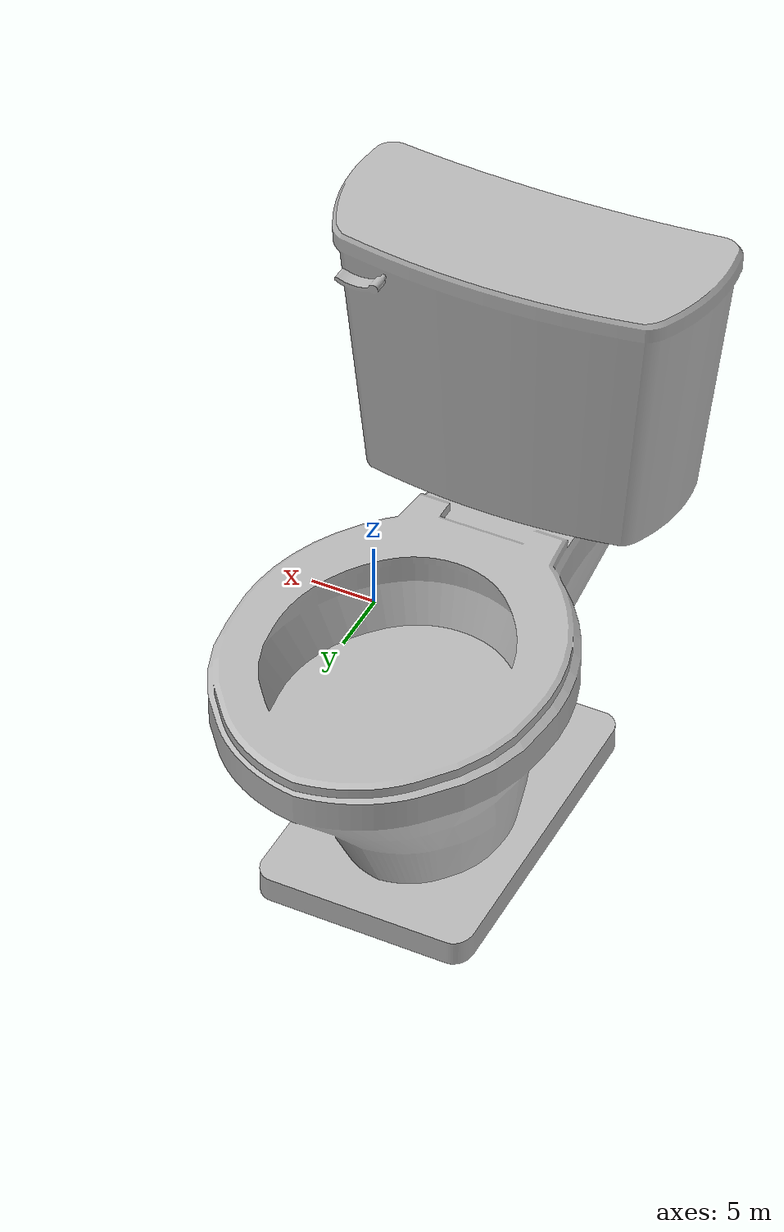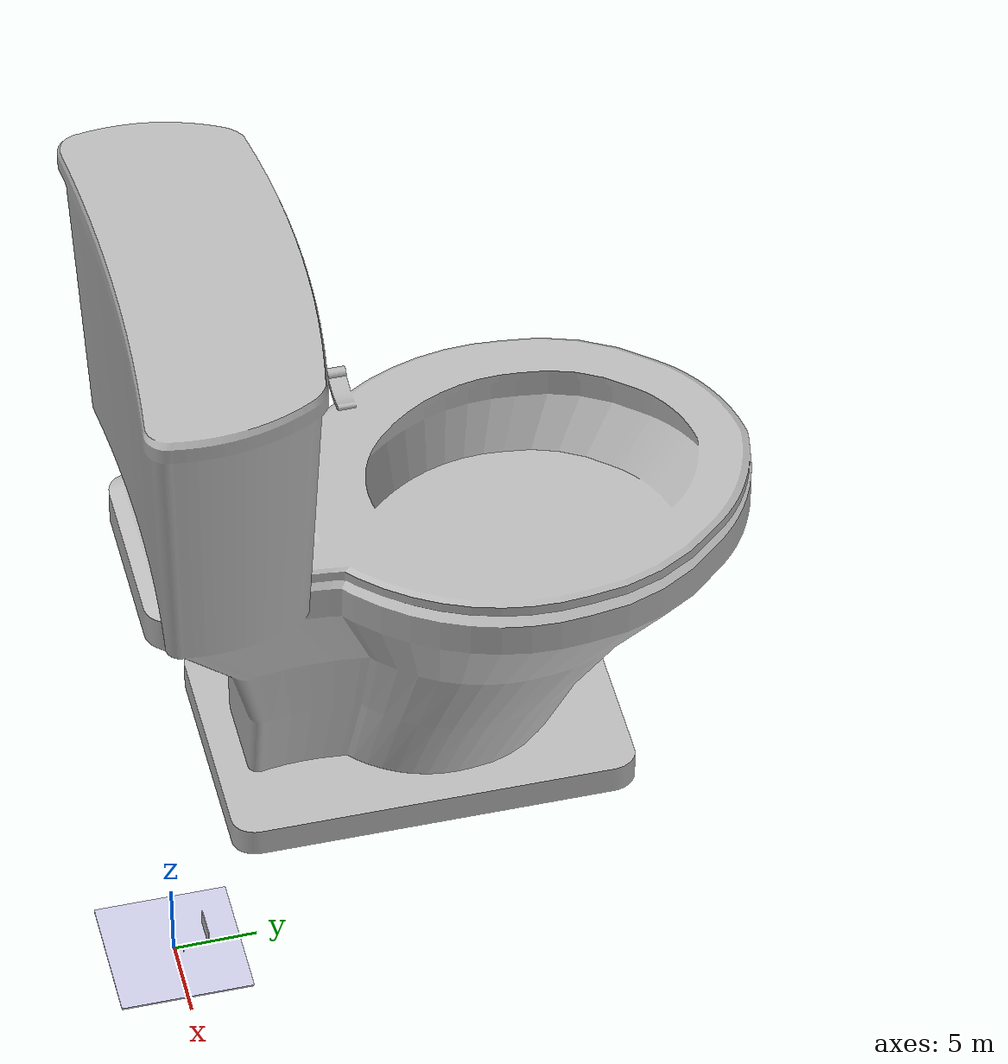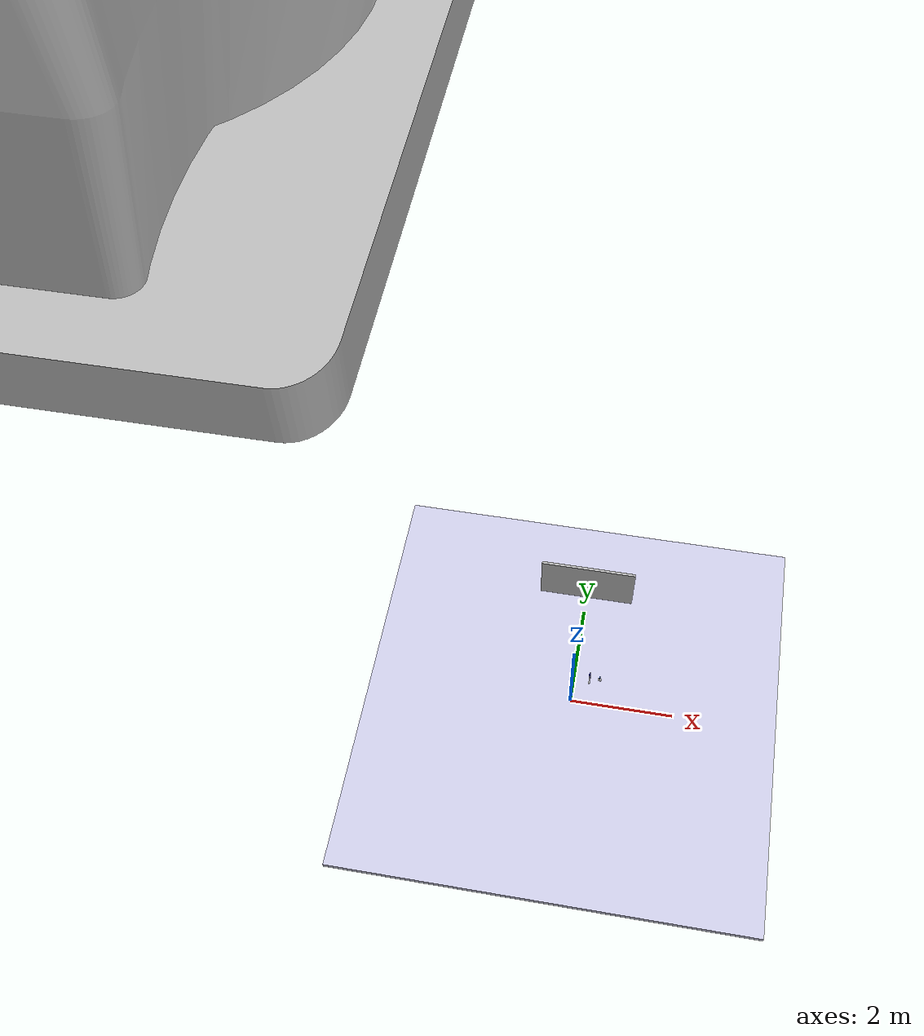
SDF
<sdf version="1.10">
 <world name="toilet_world">
  <physics name="1ms" type="ignored">
   <max_step_size>0.001</max_step_size>
   <real_time_factor>1</real_time_factor>
   <real_time_update_rate>1000</real_time_update_rate>
  </physics>
  <plugin name="gz::sim::systems::Physics" filename="gz-sim-physics-system"/>
  <plugin name="gz::sim::systems::UserCommands" filename="gz-sim-user-commands-system"/>
  <plugin name="gz::sim::systems::SceneBroadcaster" filename="gz-sim-scene-broadcaster-system"/>
  <plugin name="gz::sim::systems::Sensors" filename="gz-sim-sensors-system">
   <render_engine>ogre2</render_engine>
  </plugin>
  <scene>
   <ambient>0.400000006 0.400000006 0.400000006 1</ambient>
   <background>0.699999988 0.699999988 0.699999988 1</background>
   <shadows>true</shadows>
  </scene>
  <gravity>0 0 -9.8000000000000007</gravity>
  <magnetic_field>5.5644999999999998e-06 2.2875799999999999e-05 -4.2388400000000002e-05</magnetic_field>
  <atmosphere type="adiabatic"/>
  <model name="floor">
   <static>true</static>
   <link name="floor_link">
    <collision name="floor_collision">
     <geometry><box><size>8 8 0.10000000000000001</size></box></geometry>
    </collision>
    <visual name="floor_visual">
     <geometry><box><size>8 8 0.10000000000000001</size></box></geometry>
     <material>
      <ambient>0.800000012 0.800000012 0.899999976 1</ambient>
      <diffuse>0.800000012 0.800000012 0.899999976 1</diffuse>
      <specular>0.100000001 0.100000001 0.100000001 1</specular>
     </material>
    </visual>
    <inertial>
     <mass>1</mass>
     <inertia><ixx>1</ixx><ixy>0</ixy><ixz>0</ixz><iyy>1</iyy><iyz>0</iyz><izz>1</izz></inertia>
    </inertial>
   </link>
  </model>
  <model name="toilet">
   <pose>-1.2842909097671507 6.7122738983016393e-05 0 0 0 1.5700000841906609</pose>
   <model name="toilet">
    <static>true</static>
    <link name="link">
     <collision name="collision">
      <pose>-0.0038730000000000001 0.13400100000000001 0.58209699999999998 0 0 0</pose>
      <geometry><box><size>0.55163099999999998 1.09406 1.18218</size></box></geometry>
     </collision>
     <visual name="visual">
      <geometry>
       <mesh>
        <uri>model://toilet/meshes/toilet.dae</uri>
        <scale>1.3999999999999999 1.3999999999999999 1.3999999999999999</scale>
       </mesh>
      </geometry>
     </visual>
    </link>
   </model>
   <static>false</static>
  </model>
  <model name="bathroom_mirror">
   <pose>0 1.8990241289138794 -0.13495112955570221 1.5501099861717527 0 0</pose>
   <model name="whiteboard">
    <static>true</static>
    <link name="link">
     <collision name="collision">
      <pose>-0.010992 -0.000776 0.99821199999999999 0 0 0</pose>
      <geometry><box><size>1.9737199999999999 0.69681999999999999 2.0250699999999999</size></box></geometry>
     </collision>
     <visual name="visual">
      <geometry>
       <mesh><uri>model://whiteboard/meshes/whiteboard.obj</uri><scale>0.01 0.01 0.01</scale></mesh>
      </geometry>
     </visual>
    </link>
   </model>
   <static>false</static>
  </model>
  <model name="brush">
   <static>false</static>
   <link name="mirror_brush_body">
    <inertial>
     <mass>0.12</mass>
     <pose>0 0 0.050000000000000003 0 0 0</pose>
     <inertia>
      <ixx>0.00059999999999999995</ixx>
      <ixy>0</ixy>
      <ixz>0</ixz>
      <iyy>0.0011999999999999999</iyy>
      <iyz>0</iyz>
      <izz>0.00059999999999999995</izz>
     </inertia>
    </inertial>
    <visual name="handle_visual">
     <pose>0 0 0.065000000000000002 0 0 0</pose>
     <geometry><cylinder><radius>0.012</radius><length>0.11</length></cylinder></geometry>
     <material>
      <ambient>0.100000001 0.300000012 0.699999988 1</ambient>
      <diffuse>0.100000001 0.300000012 0.699999988 1</diffuse>
      <specular>0.300000012 0.300000012 0.300000012 1</specular>
     </material>
    </visual>
    <collision name="handle_collision">
     <pose>0 0 0.065000000000000002 0 0 0</pose>
     <geometry><cylinder><radius>0.012</radius><length>0.11</length></cylinder></geometry>
    </collision>
    <visual name="grip_visual">
     <pose>0 0 0.044999999999999998 0 0 0</pose>
     <geometry><cylinder><radius>0.014</radius><length>0.025000000000000001</length></cylinder></geometry>
     <material>
      <ambient>0.200000003 0.200000003 0.200000003 1</ambient>
      <diffuse>0.200000003 0.200000003 0.200000003 1</diffuse>
      <specular>0.0500000007 0.0500000007 0.0500000007 1</specular>
     </material>
    </visual>
    <visual name="head_visual">
     <pose>0 0 0.0060000000000000001 0 0 0</pose>
     <geometry><box><size>0.074999999999999997 0.044999999999999998 0.012</size></box></geometry>
     <material>
      <ambient>0.949999988 0.949999988 0.949999988 1</ambient>
      <diffuse>0.949999988 0.949999988 0.949999988 1</diffuse>
      <specular>0.200000003 0.200000003 0.200000003 1</specular>
     </material>
    </visual>
    <collision name="head_collision">
     <pose>0 0 0.0060000000000000001 0 0 0</pose>
     <geometry><box><size>0.074999999999999997 0.044999999999999998 0.012</size></box></geometry>
    </collision>
    <visual name="bristles_1_1">
     <pose>-0.025000000000000001 -0.014999999999999999 -0.002 0 0 0</pose>
     <geometry>
      <cylinder><radius>0.00020000000000000001</radius><length>0.0060000000000000001</length></cylinder>
     </geometry>
     <material>
      <ambient>0.850000024 0.899999976 1 1</ambient>
      <diffuse>0.850000024 0.899999976 1 1</diffuse>
      <specular>0.0500000007 0.0500000007 0.0500000007 1</specular>
     </material>
    </visual>
    <visual name="bristles_1_2">
     <pose>-0.025000000000000001 -0.0070000000000000001 -0.002 0 0 0</pose>
     <geometry>
      <cylinder><radius>0.00020000000000000001</radius><length>0.0060000000000000001</length></cylinder>
     </geometry>
     <material>
      <ambient>0.850000024 0.899999976 1 1</ambient>
      <diffuse>0.850000024 0.899999976 1 1</diffuse>
      <specular>0.0500000007 0.0500000007 0.0500000007 1</specular>
     </material>
    </visual>
    <visual name="bristles_1_3">
     <pose>-0.025000000000000001 0 -0.002 0 0 0</pose>
     <geometry>
      <cylinder><radius>0.00020000000000000001</radius><length>0.0060000000000000001</length></cylinder>
     </geometry>
     <material>
      <ambient>0.850000024 0.899999976 1 1</ambient>
      <diffuse>0.850000024 0.899999976 1 1</diffuse>
      <specular>0.0500000007 0.0500000007 0.0500000007 1</specular>
     </material>
    </visual>
    <visual name="bristles_1_4">
     <pose>-0.025000000000000001 0.0070000000000000001 -0.002 0 0 0</pose>
     <geometry>
      <cylinder><radius>0.00020000000000000001</radius><length>0.0060000000000000001</length></cylinder>
     </geometry>
     <material>
      <ambient>0.850000024 0.899999976 1 1</ambient>
      <diffuse>0.850000024 0.899999976 1 1</diffuse>
      <specular>0.0500000007 0.0500000007 0.0500000007 1</specular>
     </material>
    </visual>
    <visual name="bristles_1_5">
     <pose>-0.025000000000000001 0.014999999999999999 -0.002 0 0 0</pose>
     <geometry>
      <cylinder><radius>0.00020000000000000001</radius><length>0.0060000000000000001</length></cylinder>
     </geometry>
     <material>
      <ambient>0.850000024 0.899999976 1 1</ambient>
      <diffuse>0.850000024 0.899999976 1 1</diffuse>
      <specular>0.0500000007 0.0500000007 0.0500000007 1</specular>
     </material>
    </visual>
    <visual name="bristles_2_1">
     <pose>-0.012 -0.014999999999999999 -0.002 0 0 0</pose>
     <geometry>
      <cylinder><radius>0.00020000000000000001</radius><length>0.0060000000000000001</length></cylinder>
     </geometry>
     <material>
      <ambient>0.850000024 0.899999976 1 1</ambient>
      <diffuse>0.850000024 0.899999976 1 1</diffuse>
      <specular>0.0500000007 0.0500000007 0.0500000007 1</specular>
     </material>
    </visual>
    <visual name="bristles_2_2">
     <pose>-0.012 -0.0070000000000000001 -0.002 0 0 0</pose>
     <geometry>
      <cylinder><radius>0.00020000000000000001</radius><length>0.0060000000000000001</length></cylinder>
     </geometry>
     <material>
      <ambient>0.850000024 0.899999976 1 1</ambient>
      <diffuse>0.850000024 0.899999976 1 1</diffuse>
      <specular>0.0500000007 0.0500000007 0.0500000007 1</specular>
     </material>
    </visual>
    <visual name="bristles_2_3">
     <pose>-0.012 0 -0.002 0 0 0</pose>
     <geometry>
      <cylinder><radius>0.00020000000000000001</radius><length>0.0060000000000000001</length></cylinder>
     </geometry>
     <material>
      <ambient>0.850000024 0.899999976 1 1</ambient>
      <diffuse>0.850000024 0.899999976 1 1</diffuse>
      <specular>0.0500000007 0.0500000007 0.0500000007 1</specular>
     </material>
    </visual>
    <visual name="bristles_2_4">
     <pose>-0.012 0.0070000000000000001 -0.002 0 0 0</pose>
     <geometry>
      <cylinder><radius>0.00020000000000000001</radius><length>0.0060000000000000001</length></cylinder>
     </geometry>
     <material>
      <ambient>0.850000024 0.899999976 1 1</ambient>
      <diffuse>0.850000024 0.899999976 1 1</diffuse>
      <specular>0.0500000007 0.0500000007 0.0500000007 1</specular>
     </material>
    </visual>
    <visual name="bristles_2_5">
     <pose>-0.012 0.014999999999999999 -0.002 0 0 0</pose>
     <geometry>
      <cylinder><radius>0.00020000000000000001</radius><length>0.0060000000000000001</length></cylinder>
     </geometry>
     <material>
      <ambient>0.850000024 0.899999976 1 1</ambient>
      <diffuse>0.850000024 0.899999976 1 1</diffuse>
      <specular>0.0500000007 0.0500000007 0.0500000007 1</specular>
     </material>
    </visual>
    <visual name="bristles_3_1">
     <pose>0 -0.014999999999999999 -0.002 0 0 0</pose>
     <geometry>
      <cylinder><radius>0.00020000000000000001</radius><length>0.0060000000000000001</length></cylinder>
     </geometry>
     <material>
      <ambient>0.850000024 0.899999976 1 1</ambient>
      <diffuse>0.850000024 0.899999976 1 1</diffuse>
      <specular>0.0500000007 0.0500000007 0.0500000007 1</specular>
     </material>
    </visual>
    <visual name="bristles_3_2">
     <pose>0 -0.0070000000000000001 -0.002 0 0 0</pose>
     <geometry>
      <cylinder><radius>0.00020000000000000001</radius><length>0.0060000000000000001</length></cylinder>
     </geometry>
     <material>
      <ambient>0.850000024 0.899999976 1 1</ambient>
      <diffuse>0.850000024 0.899999976 1 1</diffuse>
      <specular>0.0500000007 0.0500000007 0.0500000007 1</specular>
     </material>
    </visual>
    <visual name="bristles_3_3">
     <pose>0 0 -0.002 0 0 0</pose>
     <geometry>
      <cylinder><radius>0.00020000000000000001</radius><length>0.0060000000000000001</length></cylinder>
     </geometry>
     <material>
      <ambient>0.850000024 0.899999976 1 1</ambient>
      <diffuse>0.850000024 0.899999976 1 1</diffuse>
      <specular>0.0500000007 0.0500000007 0.0500000007 1</specular>
     </material>
    </visual>
    <visual name="bristles_3_4">
     <pose>0 0.0070000000000000001 -0.002 0 0 0</pose>
     <geometry>
      <cylinder><radius>0.00020000000000000001</radius><length>0.0060000000000000001</length></cylinder>
     </geometry>
     <material>
      <ambient>0.850000024 0.899999976 1 1</ambient>
      <diffuse>0.850000024 0.899999976 1 1</diffuse>
      <specular>0.0500000007 0.0500000007 0.0500000007 1</specular>
     </material>
    </visual>
    <visual name="bristles_3_5">
     <pose>0 0.014999999999999999 -0.002 0 0 0</pose>
     <geometry>
      <cylinder><radius>0.00020000000000000001</radius><length>0.0060000000000000001</length></cylinder>
     </geometry>
     <material>
      <ambient>0.850000024 0.899999976 1 1</ambient>
      <diffuse>0.850000024 0.899999976 1 1</diffuse>
      <specular>0.0500000007 0.0500000007 0.0500000007 1</specular>
     </material>
    </visual>
    <visual name="bristles_4_1">
     <pose>0.012 -0.014999999999999999 -0.002 0 0 0</pose>
     <geometry>
      <cylinder><radius>0.00020000000000000001</radius><length>0.0060000000000000001</length></cylinder>
     </geometry>
     <material>
      <ambient>0.850000024 0.899999976 1 1</ambient>
      <diffuse>0.850000024 0.899999976 1 1</diffuse>
      <specular>0.0500000007 0.0500000007 0.0500000007 1</specular>
     </material>
    </visual>
    <visual name="bristles_4_2">
     <pose>0.012 -0.0070000000000000001 -0.002 0 0 0</pose>
     <geometry>
      <cylinder><radius>0.00020000000000000001</radius><length>0.0060000000000000001</length></cylinder>
     </geometry>
     <material>
      <ambient>0.850000024 0.899999976 1 1</ambient>
      <diffuse>0.850000024 0.899999976 1 1</diffuse>
      <specular>0.0500000007 0.0500000007 0.0500000007 1</specular>
     </material>
    </visual>
    <visual name="bristles_4_3">
     <pose>0.012 0 -0.002 0 0 0</pose>
     <geometry>
      <cylinder><radius>0.00020000000000000001</radius><length>0.0060000000000000001</length></cylinder>
     </geometry>
     <material>
      <ambient>0.850000024 0.899999976 1 1</ambient>
      <diffuse>0.850000024 0.899999976 1 1</diffuse>
      <specular>0.0500000007 0.0500000007 0.0500000007 1</specular>
     </material>
    </visual>
    <visual name="bristles_4_4">
     <pose>0.012 0.0070000000000000001 -0.002 0 0 0</pose>
     <geometry>
      <cylinder><radius>0.00020000000000000001</radius><length>0.0060000000000000001</length></cylinder>
     </geometry>
     <material>
      <ambient>0.850000024 0.899999976 1 1</ambient>
      <diffuse>0.850000024 0.899999976 1 1</diffuse>
      <specular>0.0500000007 0.0500000007 0.0500000007 1</specular>
     </material>
    </visual>
    <visual name="bristles_4_5">
     <pose>0.012 0.014999999999999999 -0.002 0 0 0</pose>
     <geometry>
      <cylinder><radius>0.00020000000000000001</radius><length>0.0060000000000000001</length></cylinder>
     </geometry>
     <material>
      <ambient>0.850000024 0.899999976 1 1</ambient>
      <diffuse>0.850000024 0.899999976 1 1</diffuse>
      <specular>0.0500000007 0.0500000007 0.0500000007 1</specular>
     </material>
    </visual>
    <visual name="bristles_5_1">
     <pose>0.025000000000000001 -0.014999999999999999 -0.002 0 0 0</pose>
     <geometry>
      <cylinder><radius>0.00020000000000000001</radius><length>0.0060000000000000001</length></cylinder>
     </geometry>
     <material>
      <ambient>0.850000024 0.899999976 1 1</ambient>
      <diffuse>0.850000024 0.899999976 1 1</diffuse>
      <specular>0.0500000007 0.0500000007 0.0500000007 1</specular>
     </material>
    </visual>
    <visual name="bristles_5_2">
     <pose>0.025000000000000001 -0.0070000000000000001 -0.002 0 0 0</pose>
     <geometry>
      <cylinder><radius>0.00020000000000000001</radius><length>0.0060000000000000001</length></cylinder>
     </geometry>
     <material>
      <ambient>0.850000024 0.899999976 1 1</ambient>
      <diffuse>0.850000024 0.899999976 1 1</diffuse>
      <specular>0.0500000007 0.0500000007 0.0500000007 1</specular>
     </material>
    </visual>
    <visual name="bristles_5_3">
     <pose>0.025000000000000001 0 -0.002 0 0 0</pose>
     <geometry>
      <cylinder><radius>0.00020000000000000001</radius><length>0.0060000000000000001</length></cylinder>
     </geometry>
     <material>
      <ambient>0.850000024 0.899999976 1 1</ambient>
      <diffuse>0.850000024 0.899999976 1 1</diffuse>
      <specular>0.0500000007 0.0500000007 0.0500000007 1</specular>
     </material>
    </visual>
    <visual name="bristles_5_4">
     <pose>0.025000000000000001 0.0070000000000000001 -0.002 0 0 0</pose>
     <geometry>
      <cylinder><radius>0.00020000000000000001</radius><length>0.0060000000000000001</length></cylinder>
     </geometry>
     <material>
      <ambient>0.850000024 0.899999976 1 1</ambient>
      <diffuse>0.850000024 0.899999976 1 1</diffuse>
      <specular>0.0500000007 0.0500000007 0.0500000007 1</specular>
     </material>
    </visual>
    <visual name="bristles_5_5">
     <pose>0.025000000000000001 0.014999999999999999 -0.002 0 0 0</pose>
     <geometry>
      <cylinder><radius>0.00020000000000000001</radius><length>0.0060000000000000001</length></cylinder>
     </geometry>
     <material>
      <ambient>0.850000024 0.899999976 1 1</ambient>
      <diffuse>0.850000024 0.899999976 1 1</diffuse>
      <specular>0.0500000007 0.0500000007 0.0500000007 1</specular>
     </material>
    </visual>
    <collision name="bristles_collision">
     <pose>0 0 -0.002 0 0 0</pose>
     <geometry><box><size>0.065000000000000002 0.040000000000000001 0.0060000000000000001</size></box></geometry>
     <surface>
      <friction><ode><mu>0.69999999999999996</mu><mu2>0.69999999999999996</mu2></ode></friction>
      <bounce><restitution_coefficient>0.050000000000000003</restitution_coefficient></bounce>
      <contact>
       <ode>
        <soft_cfm>0.10000000000000001</soft_cfm>
        <soft_erp>0.20000000000000001</soft_erp>
        <kp>1000</kp>
        <kd>10</kd>
       </ode>
      </contact>
     </surface>
    </collision>
   </link>
   <pose>0.5 0.50030950947740216 0.07378026972589935 -0.00096639195929281666 -3.8021242292648667e-14 1.6900720111836019e-16</pose>
  </model>
  <model name="window_squeegee">
   <static>false</static>
   <link name="squeegee_body">
    <inertial>
     <mass>0.17999999999999999</mass>
     <pose>0 0 0.080000000000000002 0 0 0</pose>
     <inertia>
      <ixx>0.00089999999999999998</ixx>
      <ixy>0</ixy>
      <ixz>0</ixz>
      <iyy>0.0011999999999999999</iyy>
      <iyz>0</iyz>
      <izz>0.0015</izz>
     </inertia>
    </inertial>
    <visual name="handle_visual">
     <pose>0 0 0.10000000000000001 0 0 0</pose>
     <geometry>
      <cylinder><radius>0.014999999999999999</radius><length>0.17999999999999999</length></cylinder>
     </geometry>
     <material>
      <ambient>0.200000003 0.200000003 0.800000012 1</ambient>
      <diffuse>0.200000003 0.200000003 0.800000012 1</diffuse>
      <specular>0.300000012 0.300000012 0.300000012 1</specular>
     </material>
    </visual>
    <collision name="handle_collision">
     <pose>0 0 0.10000000000000001 0 0 0</pose>
     <geometry>
      <cylinder><radius>0.014999999999999999</radius><length>0.17999999999999999</length></cylinder>
     </geometry>
    </collision>
    <visual name="grip_visual">
     <pose>0 0 0.080000000000000002 0 0 0</pose>
     <geometry>
      <cylinder><radius>0.017000000000000001</radius><length>0.050000000000000003</length></cylinder>
     </geometry>
     <material>
      <ambient>0.100000001 0.100000001 0.100000001 1</ambient>
      <diffuse>0.100000001 0.100000001 0.100000001 1</diffuse>
      <specular>0.0500000007 0.0500000007 0.0500000007 1</specular>
     </material>
    </visual>
    <visual name="frame_visual">
     <pose>0 0 0.0050000000000000001 0 0 0</pose>
     <geometry><box><size>0.25 0.02 0.01</size></box></geometry>
     <material>
      <ambient>0.699999988 0.699999988 0.699999988 1</ambient>
      <diffuse>0.699999988 0.699999988 0.699999988 1</diffuse>
      <specular>0.5 0.5 0.5 1</specular>
     </material>
    </visual>
    <collision name="frame_collision">
     <pose>0 0 0.0050000000000000001 0 0 0</pose>
     <geometry><box><size>0.25 0.02 0.01</size></box></geometry>
    </collision>
    <visual name="rubber_blade_visual">
     <pose>0 0 -0.0030000000000000001 0 0 0</pose>
     <geometry><box><size>0.23999999999999999 0.0030000000000000001 0.0080000000000000002</size></box></geometry>
     <material>
      <ambient>0.100000001 0.100000001 0.100000001 1</ambient>
      <diffuse>0.200000003 0.200000003 0.200000003 1</diffuse>
      <specular>0.0500000007 0.0500000007 0.0500000007 1</specular>
     </material>
    </visual>
    <collision name="rubber_blade_collision">
     <pose>0 0 -0.0030000000000000001 0 0 0</pose>
     <geometry><box><size>0.23999999999999999 0.0030000000000000001 0.0080000000000000002</size></box></geometry>
     <surface>
      <friction><ode><mu>0.80000000000000004</mu><mu2>0.80000000000000004</mu2></ode></friction>
      <bounce><restitution_coefficient>0.10000000000000001</restitution_coefficient></bounce>
      <contact>
       <ode>
        <soft_cfm>0.050000000000000003</soft_cfm>
        <soft_erp>0.20000000000000001</soft_erp>
        <kp>5000</kp>
        <kd>50</kd>
       </ode>
      </contact>
     </surface>
    </collision>
    <visual name="corner_support_left">
     <pose>-0.11 0 0 0 0 0</pose>
     <geometry><box><size>0.014999999999999999 0.025000000000000001 0.014999999999999999</size></box></geometry>
     <material>
      <ambient>0.699999988 0.699999988 0.699999988 1</ambient>
      <diffuse>0.699999988 0.699999988 0.699999988 1</diffuse>
      <specular>0.5 0.5 0.5 1</specular>
     </material>
    </visual>
    <visual name="corner_support_right">
     <pose>0.11 0 0 0 0 0</pose>
     <geometry><box><size>0.014999999999999999 0.025000000000000001 0.014999999999999999</size></box></geometry>
     <material>
      <ambient>0.699999988 0.699999988 0.699999988 1</ambient>
      <diffuse>0.699999988 0.699999988 0.699999988 1</diffuse>
      <specular>0.5 0.5 0.5 1</specular>
     </material>
    </visual>
    <visual name="connection_joint">
     <pose>0 0 0.014999999999999999 0 0 0</pose>
     <geometry><box><size>0.040000000000000001 0.029999999999999999 0.02</size></box></geometry>
     <material>
      <ambient>0.600000024 0.600000024 0.600000024 1</ambient>
      <diffuse>0.600000024 0.600000024 0.600000024 1</diffuse>
      <specular>0.400000006 0.400000006 0.400000006 1</specular>
     </material>
    </visual>
    <collision name="connection_joint_collision">
     <pose>0 0 0.014999999999999999 0 0 0</pose>
     <geometry><box><size>0.040000000000000001 0.029999999999999999 0.02</size></box></geometry>
    </collision>
   </link>
   <pose>0.30000001192092901 0.50045432545375579 0.07950825840083231 1.01430774384923e-09 0.00014694872502281378 1.5707999780625499</pose>
  </model>
  <light name="sun" type="directional">
   <pose>0 0 10 0 0 0</pose>
   <intensity>1</intensity>
   <direction>-0.5 0.10000000000000001 -0.90000000000000002</direction>
   <diffuse>0.800000012 0.800000012 0.800000012 1</diffuse>
   <specular>0.200000003 0.200000003 0.200000003 1</specular>
   <attenuation>
    <range>1000</range>
    <linear>0.01</linear>
    <constant>0.90000000000000002</constant>
    <quadratic>0.001</quadratic>
   </attenuation>
   <spot><inner_angle>0</inner_angle><outer_angle>0</outer_angle><falloff>0</falloff></spot>
  </light>
  <light name="bathroom_light" type="point">
   <pose>0 0 2.5 0 0 0</pose>
   <cast_shadows>false</cast_shadows>
   <intensity>1</intensity>
   <direction>0 0 -1</direction>
   <diffuse>0.899999976 0.899999976 0.800000012 1</diffuse>
   <specular>0.100000001 0.100000001 0.100000001 1</specular>
   <attenuation>
    <range>10</range>
    <linear>0.10000000000000001</linear>
    <constant>0.20000000000000001</constant>
    <quadratic>0.01</quadratic>
   </attenuation>
   <spot><inner_angle>0</inner_angle><outer_angle>0</outer_angle><falloff>0</falloff></spot>
  </light>
 </world>
</sdf>
